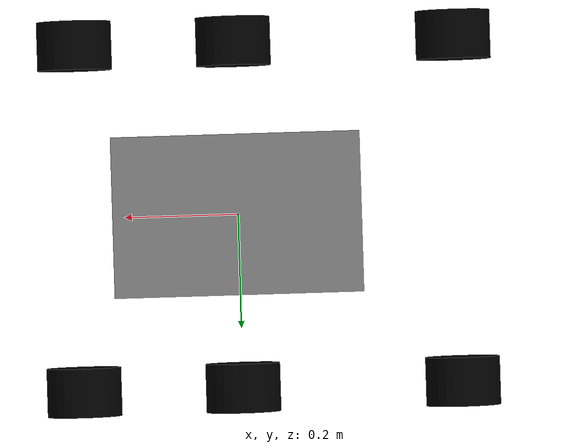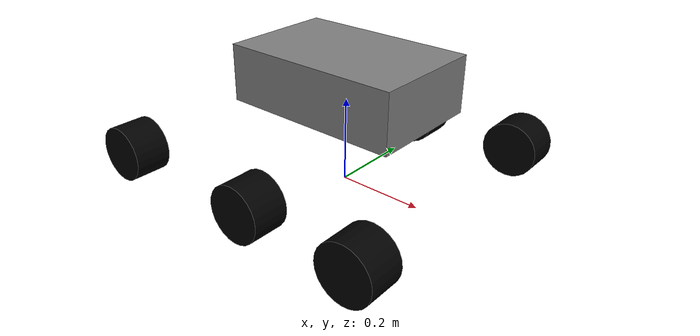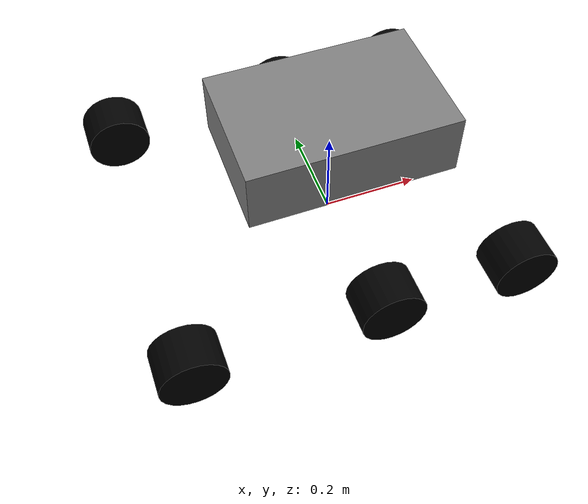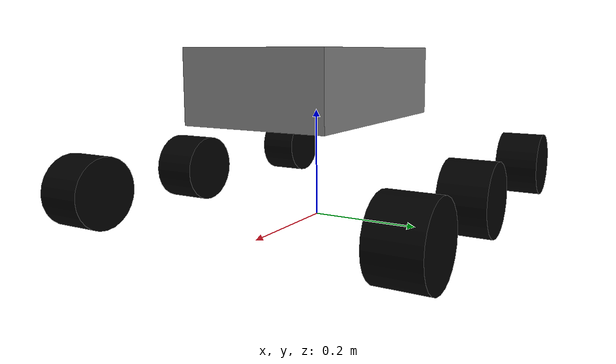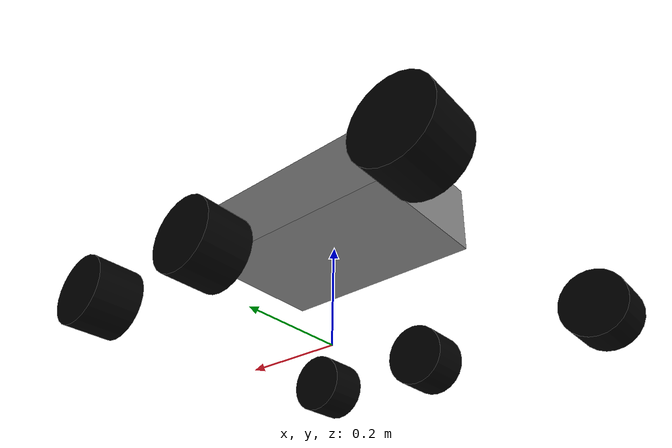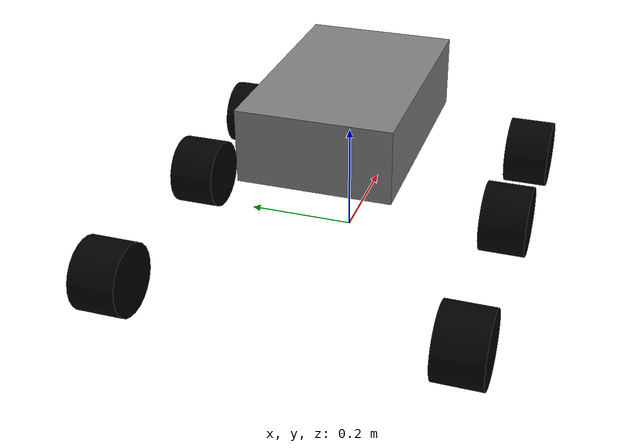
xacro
<?xml version ="1.0"?>
<robot name = "rover" xmlns:xacro = "http://www.ros.org/wiki/xacro">
    <link name = "base_link">
    <visual>
        <geometry>
            <box size = "0.421 0.272 0.132"/>
</geometry>
<origin xyz = "0 0 0.25" rpy = "0 0 0"/>
<material name = "grey">
    <color rgba = "0.5 0.5 0.5 1.0"/>
</material>
</visual>
</link>

<link name = "left_rocker_link"/>

<!-- joint from base to left rocker -->
<joint name = "base_to_left_rocker" type = "revolute">
    <parent link = "base_link"/>
    <child link = "left_rocker_link"/>
    <origin xyz = "0.072 0.136 0.256" rpy = "0 0 0"/>
    <axis xyz = "0 1 0"/> <!-- rotation about y-axis -->
    <limit lower ="${-pi/6}" upper ="${pi/6}" effort ="10" velocity = "1"/>
    </joint>

    <link name = "left_front_steer_link">
    <visual>
        <geometry>
            <cylinder length = "0.05" radius = "0.02"/>
        </geometry>
        <origin xyz = "0 0 0" rpy = "0 0 0"/>
        <material name = "blue">
            <color rgba = "0 0 1 1.0"/>
        </material>
    </visual>
    </link>

    <joint name="left_rocker_to_left_front_steer" type="revolute">
  <parent link="left_rocker_link"/>
  <child link="left_front_steer_link"/>
  <origin xyz="0.2056 0.16615 -0.191" rpy="0 0 0"/>
  <axis xyz="0 0 1"/>
  <limit lower="${-pi/3}" upper="${pi/3}" effort="10" velocity="1"/>
</joint>

<link name = "left_front_wheel_link">
    <visual>
        <geometry>
            <cylinder length = "0.0848" radius = "0.065"/>
        </geometry>
        <origin xyz = "0 0 0" rpy = "${pi/2} 0 0"/>
        <material name = "black">
            <color rgba = "0 0 0 1.0"/>
        </material>
    </visual>
</link>

<joint name = "left_front_steer_to_left_front_wheel" type = "continuous">
    <parent link = "left_front_steer_link"/>
    <child link = "left_front_wheel_link"/>
    <origin xyz = "0 0 0" rpy = "0 0 0"/>
    <axis xyz = "0 1 0"/> <!-- rotation about y-axis -->
</joint>

<link name ="left_bogie_link"/>
<joint name = "left_rocker_to_left_bogie" type = "revolute">
    <parent link = "left_rocker_link"/>
    <child link = "left_bogie_link"/>
    <origin xyz = "-0.194 0 -0.075" rpy = "0 0 0"/>
    <axis xyz = "0 1 0"/> <!-- rotation about y-axis -->
    <limit lower ="${-pi/6}" upper ="${pi/6}" effort ="10" velocity = "1"/>
</joint>

<link name = "left_mid_wheel_link">
    <visual>
        <geometry>
            <cylinder length = "0.0848" radius = "0.065"/>
        </geometry>
        <origin xyz = "0 0 0" rpy = "${pi/2} 0 0"/>
        <material name = "black"/>
    </visual>
</link>

<joint name = "left_bogie_to_left_mid_wheel" type = "continuous">
    <parent link = "left_bogie_link"/>
    <child link = "left_mid_wheel_link"/>
    <origin xyz = "0.122 0.16615 -0.116" rpy = "0 0 0"/>
    <axis xyz = "0 1 0"/>
</joint>

<link name = "left_rear_steer_link">
    <visual>
        <geometry>
            <cylinder length = "0.05" radius = "0.02"/>
        </geometry>
        <origin xyz = "0 0 0" rpy = "0 0 0"/>
        <material name = "blue"/>
    </visual>
</link>

<joint name = "left_bogie_to_left_rear_steer" type = "revolute">
    <parent link = "left_bogie_link"/>
    <child link = "left_rear_steer_link"/>
    <origin xyz = "-0.262 0.16615 -0.116" rpy = "0 0 0"/>
    <axis xyz = "0 0 1"/>
    <limit lower ="${-pi/3}" upper ="${pi/3}" effort ="10" velocity = "1"/>
</joint>

<link name = "left_rear_wheel_link">
    <visual>
        <geometry>
            <cylinder length = "0.0848" radius = "0.065"/>
        </geometry>
        <origin xyz = "0 0 0" rpy = "${pi/2} 0 0"/>
        <material name = "black"/>
    </visual>
</link>

<joint name = "left_rear_steer_to_left_rear_wheel" type = "continuous">
    <parent link = "left_rear_steer_link"/>
    <child link = "left_rear_wheel_link"/>
    <origin xyz = "0 0 0" rpy = "0 0 0"/>
    <axis xyz = "0 1 0"/>
</joint>

<link name = "right_rocker_link"/>

<!-- joint from base to right rocker -->
<joint name = "base_to_right_rocker" type = "revolute">
    <parent link = "base_link"/>
    <child link = "right_rocker_link"/>
    <origin xyz = "0.072 -0.136 0.256" rpy = "0 0 0"/>
    <axis xyz = "0 1 0"/>
    <limit lower ="${-pi/6}" upper ="${pi/6}" effort ="10" velocity = "1"/>
</joint>

<link name = "right_front_steer_link">
    <visual>
        <geometry>
            <cylinder length = "0.05" radius = "0.02"/>
        </geometry>
        <origin xyz = "0 0 0" rpy = "0 0 0"/>
        <material name = "blue"/>
    </visual>
</link>

<joint name = "right_rocker_to_right_front_steer" type = "revolute">
    <parent link = "right_rocker_link"/>
    <child link = "right_front_steer_link"/>
    <origin xyz = "0.2056 -0.16615 -0.191" rpy = "0 0 0"/>
    <axis xyz = "0 0 1"/>
    <limit lower ="${-pi/3}" upper ="${pi/3}" effort ="10" velocity = "1"/>
</joint>

<link name = "right_front_wheel_link">
    <visual>
        <geometry>
            <cylinder length = "0.0848" radius = "0.065"/>
        </geometry>
        <origin xyz = "0 0 0" rpy = "${pi/2} 0 0"/>
        <material name = "black"/>
    </visual>
</link>

<joint name = "right_front_steer_to_right_front_wheel" type = "continuous">
    <parent link = "right_front_steer_link"/>
    <child link = "right_front_wheel_link"/>
    <origin xyz = "0 0 0" rpy = "0 0 0"/>
    <axis xyz = "0 1 0"/>
</joint>

<link name = "right_bogie_link"/>

<joint name = "right_rocker_to_right_bogie" type = "revolute">
    <parent link = "right_rocker_link"/>
    <child link = "right_bogie_link"/>
    <origin xyz = "-0.194 0 -0.075" rpy = "0 0 0"/>
    <axis xyz = "0 1 0"/>
    <limit lower ="${-pi/6}" upper ="${pi/6}" effort ="10" velocity = "1"/>
</joint>

<link name = "right_mid_wheel_link">
    <visual>
        <geometry>
            <cylinder length = "0.0848" radius = "0.065"/>
        </geometry>
        <origin xyz = "0 0 0" rpy = "${pi/2} 0 0"/>
        <material name = "black"/>
    </visual>
</link>

<joint name = "right_bogie_to_right_mid_wheel" type = "continuous">
    <parent link = "right_bogie_link"/>
    <child link = "right_mid_wheel_link"/>
    <origin xyz = "0.122 -0.16615 -0.116" rpy = "0 0 0"/>
    <axis xyz = "0 1 0"/>
</joint>

<link name = "right_rear_steer_link">
    <visual>
        <geometry>
            <cylinder length = "0.05" radius = "0.02"/>
        </geometry>
        <origin xyz = "0 0 0" rpy = "0 0 0"/>
        <material name = "blue"/>
    </visual>
</link>

<joint name = "right_bogie_to_right_rear_steer" type = "revolute">
    <parent link = "right_bogie_link"/>
    <child link = "right_rear_steer_link"/>
    <origin xyz = "-0.262 -0.16615 -0.116" rpy = "0 0 0"/>
    <axis xyz = "0 0 1"/>
    <limit lower ="${-pi/3}" upper ="${pi/3}" effort ="10" velocity = "1"/>
</joint>

<link name = "right_rear_wheel_link">
    <visual>
        <geometry>
            <cylinder length = "0.0848" radius = "0.065"/>
        </geometry>
        <origin xyz = "0 0 0" rpy = "${pi/2} 0 0"/>
        <material name = "black"/>
    </visual>
</link>

<joint name = "right_rear_steer_to_right_rear_wheel" type = "continuous">
    <parent link = "right_rear_steer_link"/>
    <child link = "right_rear_wheel_link"/>
    <origin xyz = "0 0 0" rpy = "0 0 0"/>
    <axis xyz = "0 1 0"/>
</joint>

</robot>
